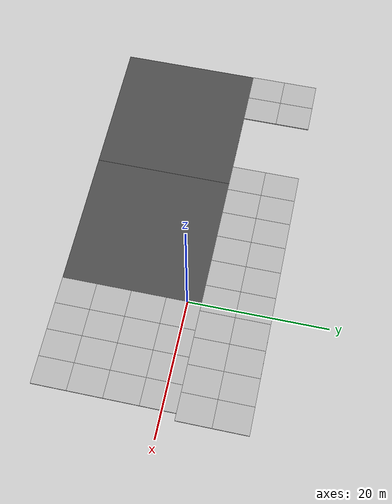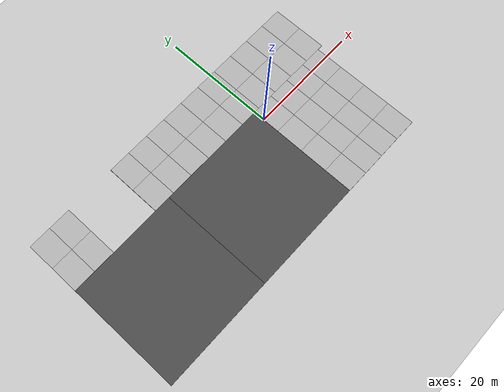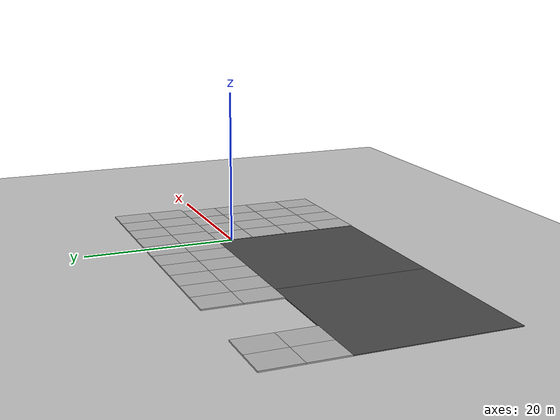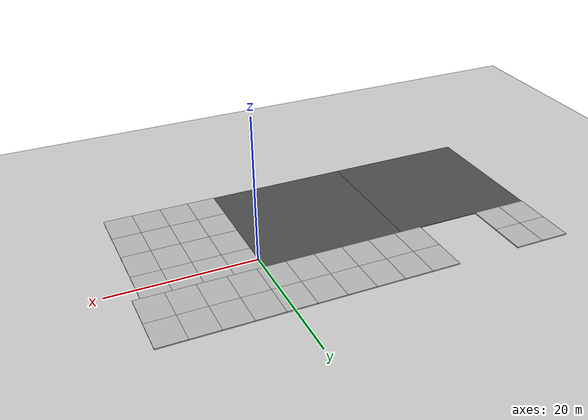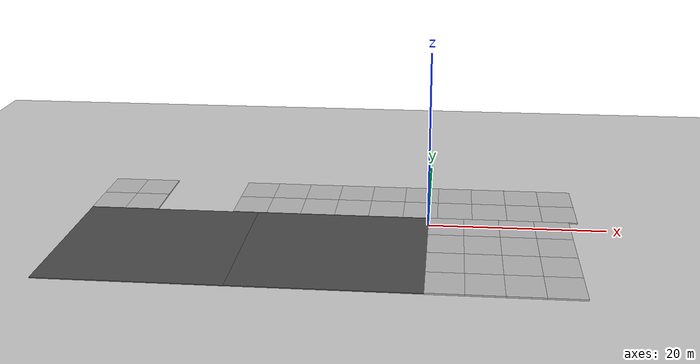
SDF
<sdf version="1.4">
 <world name="default">
  <light name="sun" type="directional">
   <pose>0 0 10 0 -0 0</pose>
   <diffuse>0.8 0.8 0.8 1</diffuse>
   <specular>0.2 0.2 0.2 1</specular>
   <attenuation>
    <range>1000</range>
    <constant>0.9</constant>
    <linear>0.01</linear>
    <quadratic>0.001</quadratic>
   </attenuation>
   <direction>-0.5 0.1 -0.9</direction>
  </light>
  <model name="ground_plane">
   <static>1</static>
   <link name="link">
    <collision name="collision">
     <geometry><plane><normal>0 0 1</normal><size>100 100</size></plane></geometry>
     <surface><friction><ode><mu>100</mu><mu2>50</mu2></ode></friction></surface>
    </collision>
    <visual name="visual">
     <cast_shadows>0</cast_shadows>
     <geometry><plane><normal>0 0 1</normal><size>100 100</size></plane></geometry>
     <material>
      <script><uri>file://media/materials/scripts/gazebo.material</uri><name>Gazebo/Grey</name></script>
     </material>
    </visual>
    <velocity_decay><linear>0</linear><angular>0</angular></velocity_decay>
   </link>
  </model>
  <physics type="ode">
   <max_step_size>0.01</max_step_size>
   <real_time_factor>2</real_time_factor>
   <real_time_update_rate>100</real_time_update_rate>
   <gravity>0 0 -9.8</gravity>
  </physics>
  <scene><ambient>0.4 0.4 0.4 1</ambient><background>0.7 0.7 0.7 1</background><shadows>1</shadows></scene>
  <spherical_coordinates>
   <surface_model>EARTH_WGS84</surface_model>
   <latitude_deg>0</latitude_deg>
   <longitude_deg>0</longitude_deg>
   <elevation>0</elevation>
   <heading_deg>0</heading_deg>
  </spherical_coordinates>
  <model name="mud_box">
   <static>1</static>
   <link name="link">
    <collision name="collision"><geometry><box><size>8 10 0.2</size></box></geometry></collision>
    <visual name="visual_1">
     <pose>-2 2.5 0 0 -0 0</pose>
     <cast_shadows>0</cast_shadows>
     <geometry><box><size>4 5 0.2</size></box></geometry>
     <material>
      <script>
       <uri>model://mud_box/materials/scripts</uri>
       <uri>model://mud_box/materials/textures</uri>
       <name>vrc/mud</name>
      </script>
     </material>
    </visual>
    <visual name="visual_2">
     <pose>2 2.5 0 0 -0 0</pose>
     <cast_shadows>0</cast_shadows>
     <geometry><box><size>4 5 0.2</size></box></geometry>
     <material>
      <script>
       <uri>model://mud_box/materials/scripts</uri>
       <uri>model://mud_box/materials/textures</uri>
       <name>vrc/mud</name>
      </script>
     </material>
    </visual>
    <visual name="visual_3">
     <pose>2 -2.5 0 0 -0 0</pose>
     <cast_shadows>0</cast_shadows>
     <geometry><box><size>4 5 0.2</size></box></geometry>
     <material>
      <script>
       <uri>model://mud_box/materials/scripts</uri>
       <uri>model://mud_box/materials/textures</uri>
       <name>vrc/mud</name>
      </script>
     </material>
    </visual>
    <visual name="visual_4">
     <pose>-2 -2.5 0 0 -0 0</pose>
     <cast_shadows>0</cast_shadows>
     <geometry><box><size>4 5 0.2</size></box></geometry>
     <material>
      <script>
       <uri>model://mud_box/materials/scripts</uri>
       <uri>model://mud_box/materials/textures</uri>
       <name>vrc/mud</name>
      </script>
     </material>
    </visual>
    <velocity_decay><linear>0</linear><angular>0</angular></velocity_decay>
   </link>
   <pose>12 -3 0 0 -0 0</pose>
  </model>
  <model name="mud_box_0">
   <static>1</static>
   <link name="link">
    <collision name="collision"><geometry><box><size>8 10 0.2</size></box></geometry></collision>
    <visual name="visual_1">
     <pose>-2 2.5 0 0 -0 0</pose>
     <cast_shadows>0</cast_shadows>
     <geometry><box><size>4 5 0.2</size></box></geometry>
     <material>
      <script>
       <uri>model://mud_box/materials/scripts</uri>
       <uri>model://mud_box/materials/textures</uri>
       <name>vrc/mud</name>
      </script>
     </material>
    </visual>
    <visual name="visual_2">
     <pose>2 2.5 0 0 -0 0</pose>
     <cast_shadows>0</cast_shadows>
     <geometry><box><size>4 5 0.2</size></box></geometry>
     <material>
      <script>
       <uri>model://mud_box/materials/scripts</uri>
       <uri>model://mud_box/materials/textures</uri>
       <name>vrc/mud</name>
      </script>
     </material>
    </visual>
    <visual name="visual_3">
     <pose>2 -2.5 0 0 -0 0</pose>
     <cast_shadows>0</cast_shadows>
     <geometry><box><size>4 5 0.2</size></box></geometry>
     <material>
      <script>
       <uri>model://mud_box/materials/scripts</uri>
       <uri>model://mud_box/materials/textures</uri>
       <name>vrc/mud</name>
      </script>
     </material>
    </visual>
    <visual name="visual_4">
     <pose>-2 -2.5 0 0 -0 0</pose>
     <cast_shadows>0</cast_shadows>
     <geometry><box><size>4 5 0.2</size></box></geometry>
     <material>
      <script>
       <uri>model://mud_box/materials/scripts</uri>
       <uri>model://mud_box/materials/textures</uri>
       <name>vrc/mud</name>
      </script>
     </material>
    </visual>
    <velocity_decay><linear>0</linear><angular>0</angular></velocity_decay>
   </link>
   <pose>12 -13 0 0 -0 0</pose>
  </model>
  <model name="mud_box_1">
   <static>1</static>
   <link name="link">
    <collision name="collision"><geometry><box><size>8 10 0.2</size></box></geometry></collision>
    <visual name="visual_1">
     <pose>-2 2.5 0 0 -0 0</pose>
     <cast_shadows>0</cast_shadows>
     <geometry><box><size>4 5 0.2</size></box></geometry>
     <material>
      <script>
       <uri>model://mud_box/materials/scripts</uri>
       <uri>model://mud_box/materials/textures</uri>
       <name>vrc/mud</name>
      </script>
     </material>
    </visual>
    <visual name="visual_2">
     <pose>2 2.5 0 0 -0 0</pose>
     <cast_shadows>0</cast_shadows>
     <geometry><box><size>4 5 0.2</size></box></geometry>
     <material>
      <script>
       <uri>model://mud_box/materials/scripts</uri>
       <uri>model://mud_box/materials/textures</uri>
       <name>vrc/mud</name>
      </script>
     </material>
    </visual>
    <visual name="visual_3">
     <pose>2 -2.5 0 0 -0 0</pose>
     <cast_shadows>0</cast_shadows>
     <geometry><box><size>4 5 0.2</size></box></geometry>
     <material>
      <script>
       <uri>model://mud_box/materials/scripts</uri>
       <uri>model://mud_box/materials/textures</uri>
       <name>vrc/mud</name>
      </script>
     </material>
    </visual>
    <visual name="visual_4">
     <pose>-2 -2.5 0 0 -0 0</pose>
     <cast_shadows>0</cast_shadows>
     <geometry><box><size>4 5 0.2</size></box></geometry>
     <material>
      <script>
       <uri>model://mud_box/materials/scripts</uri>
       <uri>model://mud_box/materials/textures</uri>
       <name>vrc/mud</name>
      </script>
     </material>
    </visual>
    <velocity_decay><linear>0</linear><angular>0</angular></velocity_decay>
   </link>
   <pose>4 -3 0 0 -0 0</pose>
  </model>
  <model name="mud_box_2">
   <static>1</static>
   <link name="link">
    <collision name="collision"><geometry><box><size>8 10 0.2</size></box></geometry></collision>
    <visual name="visual_1">
     <pose>-2 2.5 0 0 -0 0</pose>
     <cast_shadows>0</cast_shadows>
     <geometry><box><size>4 5 0.2</size></box></geometry>
     <material>
      <script>
       <uri>model://mud_box/materials/scripts</uri>
       <uri>model://mud_box/materials/textures</uri>
       <name>vrc/mud</name>
      </script>
     </material>
    </visual>
    <visual name="visual_2">
     <pose>2 2.5 0 0 -0 0</pose>
     <cast_shadows>0</cast_shadows>
     <geometry><box><size>4 5 0.2</size></box></geometry>
     <material>
      <script>
       <uri>model://mud_box/materials/scripts</uri>
       <uri>model://mud_box/materials/textures</uri>
       <name>vrc/mud</name>
      </script>
     </material>
    </visual>
    <visual name="visual_3">
     <pose>2 -2.5 0 0 -0 0</pose>
     <cast_shadows>0</cast_shadows>
     <geometry><box><size>4 5 0.2</size></box></geometry>
     <material>
      <script>
       <uri>model://mud_box/materials/scripts</uri>
       <uri>model://mud_box/materials/textures</uri>
       <name>vrc/mud</name>
      </script>
     </material>
    </visual>
    <visual name="visual_4">
     <pose>-2 -2.5 0 0 -0 0</pose>
     <cast_shadows>0</cast_shadows>
     <geometry><box><size>4 5 0.2</size></box></geometry>
     <material>
      <script>
       <uri>model://mud_box/materials/scripts</uri>
       <uri>model://mud_box/materials/textures</uri>
       <name>vrc/mud</name>
      </script>
     </material>
    </visual>
    <velocity_decay><linear>0</linear><angular>0</angular></velocity_decay>
   </link>
   <pose>13 7 0 0 -0 0</pose>
  </model>
  <model name="mud_box_3">
   <static>1</static>
   <link name="link">
    <collision name="collision"><geometry><box><size>8 10 0.2</size></box></geometry></collision>
    <visual name="visual_1">
     <pose>-2 2.5 0 0 -0 0</pose>
     <cast_shadows>0</cast_shadows>
     <geometry><box><size>4 5 0.2</size></box></geometry>
     <material>
      <script>
       <uri>model://mud_box/materials/scripts</uri>
       <uri>model://mud_box/materials/textures</uri>
       <name>vrc/mud</name>
      </script>
     </material>
    </visual>
    <visual name="visual_2">
     <pose>2 2.5 0 0 -0 0</pose>
     <cast_shadows>0</cast_shadows>
     <geometry><box><size>4 5 0.2</size></box></geometry>
     <material>
      <script>
       <uri>model://mud_box/materials/scripts</uri>
       <uri>model://mud_box/materials/textures</uri>
       <name>vrc/mud</name>
      </script>
     </material>
    </visual>
    <visual name="visual_3">
     <pose>2 -2.5 0 0 -0 0</pose>
     <cast_shadows>0</cast_shadows>
     <geometry><box><size>4 5 0.2</size></box></geometry>
     <material>
      <script>
       <uri>model://mud_box/materials/scripts</uri>
       <uri>model://mud_box/materials/textures</uri>
       <name>vrc/mud</name>
      </script>
     </material>
    </visual>
    <visual name="visual_4">
     <pose>-2 -2.5 0 0 -0 0</pose>
     <cast_shadows>0</cast_shadows>
     <geometry><box><size>4 5 0.2</size></box></geometry>
     <material>
      <script>
       <uri>model://mud_box/materials/scripts</uri>
       <uri>model://mud_box/materials/textures</uri>
       <name>vrc/mud</name>
      </script>
     </material>
    </visual>
    <velocity_decay><linear>0</linear><angular>0</angular></velocity_decay>
   </link>
   <pose>5 7 0 0 -0 0</pose>
  </model>
  <model name="mud_box_4">
   <static>1</static>
   <link name="link">
    <collision name="collision"><geometry><box><size>8 10 0.2</size></box></geometry></collision>
    <visual name="visual_1">
     <pose>-2 2.5 0 0 -0 0</pose>
     <cast_shadows>0</cast_shadows>
     <geometry><box><size>4 5 0.2</size></box></geometry>
     <material>
      <script>
       <uri>model://mud_box/materials/scripts</uri>
       <uri>model://mud_box/materials/textures</uri>
       <name>vrc/mud</name>
      </script>
     </material>
    </visual>
    <visual name="visual_2">
     <pose>2 2.5 0 0 -0 0</pose>
     <cast_shadows>0</cast_shadows>
     <geometry><box><size>4 5 0.2</size></box></geometry>
     <material>
      <script>
       <uri>model://mud_box/materials/scripts</uri>
       <uri>model://mud_box/materials/textures</uri>
       <name>vrc/mud</name>
      </script>
     </material>
    </visual>
    <visual name="visual_3">
     <pose>2 -2.5 0 0 -0 0</pose>
     <cast_shadows>0</cast_shadows>
     <geometry><box><size>4 5 0.2</size></box></geometry>
     <material>
      <script>
       <uri>model://mud_box/materials/scripts</uri>
       <uri>model://mud_box/materials/textures</uri>
       <name>vrc/mud</name>
      </script>
     </material>
    </visual>
    <visual name="visual_4">
     <pose>-2 -2.5 0 0 -0 0</pose>
     <cast_shadows>0</cast_shadows>
     <geometry><box><size>4 5 0.2</size></box></geometry>
     <material>
      <script>
       <uri>model://mud_box/materials/scripts</uri>
       <uri>model://mud_box/materials/textures</uri>
       <name>vrc/mud</name>
      </script>
     </material>
    </visual>
    <velocity_decay><linear>0</linear><angular>0</angular></velocity_decay>
   </link>
   <pose>-3 7 0 0 -0 0</pose>
  </model>
  <model name="mud_box_5">
   <static>1</static>
   <link name="link">
    <collision name="collision"><geometry><box><size>8 10 0.2</size></box></geometry></collision>
    <visual name="visual_1">
     <pose>-2 2.5 0 0 -0 0</pose>
     <cast_shadows>0</cast_shadows>
     <geometry><box><size>4 5 0.2</size></box></geometry>
     <material>
      <script>
       <uri>model://mud_box/materials/scripts</uri>
       <uri>model://mud_box/materials/textures</uri>
       <name>vrc/mud</name>
      </script>
     </material>
    </visual>
    <visual name="visual_2">
     <pose>2 2.5 0 0 -0 0</pose>
     <cast_shadows>0</cast_shadows>
     <geometry><box><size>4 5 0.2</size></box></geometry>
     <material>
      <script>
       <uri>model://mud_box/materials/scripts</uri>
       <uri>model://mud_box/materials/textures</uri>
       <name>vrc/mud</name>
      </script>
     </material>
    </visual>
    <visual name="visual_3">
     <pose>2 -2.5 0 0 -0 0</pose>
     <cast_shadows>0</cast_shadows>
     <geometry><box><size>4 5 0.2</size></box></geometry>
     <material>
      <script>
       <uri>model://mud_box/materials/scripts</uri>
       <uri>model://mud_box/materials/textures</uri>
       <name>vrc/mud</name>
      </script>
     </material>
    </visual>
    <visual name="visual_4">
     <pose>-2 -2.5 0 0 -0 0</pose>
     <cast_shadows>0</cast_shadows>
     <geometry><box><size>4 5 0.2</size></box></geometry>
     <material>
      <script>
       <uri>model://mud_box/materials/scripts</uri>
       <uri>model://mud_box/materials/textures</uri>
       <name>vrc/mud</name>
      </script>
     </material>
    </visual>
    <velocity_decay><linear>0</linear><angular>0</angular></velocity_decay>
   </link>
   <pose>-11 7 0 0 -0 0</pose>
  </model>
  <model name="asphalt_plane">
   <static>1</static>
   <link name="link">
    <collision name="collision"><geometry><box><size>20 20 0.1</size></box></geometry></collision>
    <visual name="visual">
     <cast_shadows>0</cast_shadows>
     <geometry><box><size>20 20 0.1</size></box></geometry>
     <material>
      <script>
       <uri>model://asphalt_plane/materials/scripts</uri>
       <uri>model://asphalt_plane/materials/textures</uri>
       <name>vrc/asphalt</name>
      </script>
     </material>
    </visual>
    <velocity_decay><linear>0</linear><angular>0</angular></velocity_decay>
   </link>
   <pose>-10 -8 0 0 -0 0</pose>
  </model>
  <model name="mud_box_6">
   <static>1</static>
   <link name="link">
    <collision name="collision"><geometry><box><size>8 10 0.2</size></box></geometry></collision>
    <visual name="visual_1">
     <pose>-2 2.5 0 0 -0 0</pose>
     <cast_shadows>0</cast_shadows>
     <geometry><box><size>4 5 0.2</size></box></geometry>
     <material>
      <script>
       <uri>model://mud_box/materials/scripts</uri>
       <uri>model://mud_box/materials/textures</uri>
       <name>vrc/mud</name>
      </script>
     </material>
    </visual>
    <visual name="visual_2">
     <pose>2 2.5 0 0 -0 0</pose>
     <cast_shadows>0</cast_shadows>
     <geometry><box><size>4 5 0.2</size></box></geometry>
     <material>
      <script>
       <uri>model://mud_box/materials/scripts</uri>
       <uri>model://mud_box/materials/textures</uri>
       <name>vrc/mud</name>
      </script>
     </material>
    </visual>
    <visual name="visual_3">
     <pose>2 -2.5 0 0 -0 0</pose>
     <cast_shadows>0</cast_shadows>
     <geometry><box><size>4 5 0.2</size></box></geometry>
     <material>
      <script>
       <uri>model://mud_box/materials/scripts</uri>
       <uri>model://mud_box/materials/textures</uri>
       <name>vrc/mud</name>
      </script>
     </material>
    </visual>
    <visual name="visual_4">
     <pose>-2 -2.5 0 0 -0 0</pose>
     <cast_shadows>0</cast_shadows>
     <geometry><box><size>4 5 0.2</size></box></geometry>
     <material>
      <script>
       <uri>model://mud_box/materials/scripts</uri>
       <uri>model://mud_box/materials/textures</uri>
       <name>vrc/mud</name>
      </script>
     </material>
    </visual>
    <velocity_decay><linear>0</linear><angular>0</angular></velocity_decay>
   </link>
   <pose>4 -13 0 0 -0 0</pose>
  </model>
  <model name="mud_box_7">
   <static>1</static>
   <link name="link">
    <collision name="collision"><geometry><box><size>8 10 0.2</size></box></geometry></collision>
    <visual name="visual_1">
     <pose>-2 2.5 0 0 -0 0</pose>
     <cast_shadows>0</cast_shadows>
     <geometry><box><size>4 5 0.2</size></box></geometry>
     <material>
      <script>
       <uri>model://mud_box/materials/scripts</uri>
       <uri>model://mud_box/materials/textures</uri>
       <name>vrc/mud</name>
      </script>
     </material>
    </visual>
    <visual name="visual_2">
     <pose>2 2.5 0 0 -0 0</pose>
     <cast_shadows>0</cast_shadows>
     <geometry><box><size>4 5 0.2</size></box></geometry>
     <material>
      <script>
       <uri>model://mud_box/materials/scripts</uri>
       <uri>model://mud_box/materials/textures</uri>
       <name>vrc/mud</name>
      </script>
     </material>
    </visual>
    <visual name="visual_3">
     <pose>2 -2.5 0 0 -0 0</pose>
     <cast_shadows>0</cast_shadows>
     <geometry><box><size>4 5 0.2</size></box></geometry>
     <material>
      <script>
       <uri>model://mud_box/materials/scripts</uri>
       <uri>model://mud_box/materials/textures</uri>
       <name>vrc/mud</name>
      </script>
     </material>
    </visual>
    <visual name="visual_4">
     <pose>-2 -2.5 0 0 -0 0</pose>
     <cast_shadows>0</cast_shadows>
     <geometry><box><size>4 5 0.2</size></box></geometry>
     <material>
      <script>
       <uri>model://mud_box/materials/scripts</uri>
       <uri>model://mud_box/materials/textures</uri>
       <name>vrc/mud</name>
      </script>
     </material>
    </visual>
    <velocity_decay><linear>0</linear><angular>0</angular></velocity_decay>
   </link>
   <pose>-19 7 0 0 -0 0</pose>
  </model>
  <model name="asphalt_plane_0">
   <static>1</static>
   <link name="link">
    <collision name="collision"><geometry><box><size>20 20 0.1</size></box></geometry></collision>
    <visual name="visual">
     <cast_shadows>0</cast_shadows>
     <geometry><box><size>20 20 0.1</size></box></geometry>
     <material>
      <script>
       <uri>model://asphalt_plane/materials/scripts</uri>
       <uri>model://asphalt_plane/materials/textures</uri>
       <name>vrc/asphalt</name>
      </script>
     </material>
    </visual>
    <velocity_decay><linear>0</linear><angular>0</angular></velocity_decay>
   </link>
   <pose>-30 -8 0 0 -0 0</pose>
  </model>
  <model name="mud_box_8">
   <static>1</static>
   <link name="link">
    <collision name="collision"><geometry><box><size>8 10 0.2</size></box></geometry></collision>
    <visual name="visual_1">
     <pose>-2 2.5 0 0 -0 0</pose>
     <cast_shadows>0</cast_shadows>
     <geometry><box><size>4 5 0.2</size></box></geometry>
     <material>
      <script>
       <uri>model://mud_box/materials/scripts</uri>
       <uri>model://mud_box/materials/textures</uri>
       <name>vrc/mud</name>
      </script>
     </material>
    </visual>
    <visual name="visual_2">
     <pose>2 2.5 0 0 -0 0</pose>
     <cast_shadows>0</cast_shadows>
     <geometry><box><size>4 5 0.2</size></box></geometry>
     <material>
      <script>
       <uri>model://mud_box/materials/scripts</uri>
       <uri>model://mud_box/materials/textures</uri>
       <name>vrc/mud</name>
      </script>
     </material>
    </visual>
    <visual name="visual_3">
     <pose>2 -2.5 0 0 -0 0</pose>
     <cast_shadows>0</cast_shadows>
     <geometry><box><size>4 5 0.2</size></box></geometry>
     <material>
      <script>
       <uri>model://mud_box/materials/scripts</uri>
       <uri>model://mud_box/materials/textures</uri>
       <name>vrc/mud</name>
      </script>
     </material>
    </visual>
    <visual name="visual_4">
     <pose>-2 -2.5 0 0 -0 0</pose>
     <cast_shadows>0</cast_shadows>
     <geometry><box><size>4 5 0.2</size></box></geometry>
     <material>
      <script>
       <uri>model://mud_box/materials/scripts</uri>
       <uri>model://mud_box/materials/textures</uri>
       <name>vrc/mud</name>
      </script>
     </material>
    </visual>
    <velocity_decay><linear>0</linear><angular>0</angular></velocity_decay>
   </link>
   <pose>-36 7 0 0 -0 0</pose>
  </model>
 </world>
</sdf>
